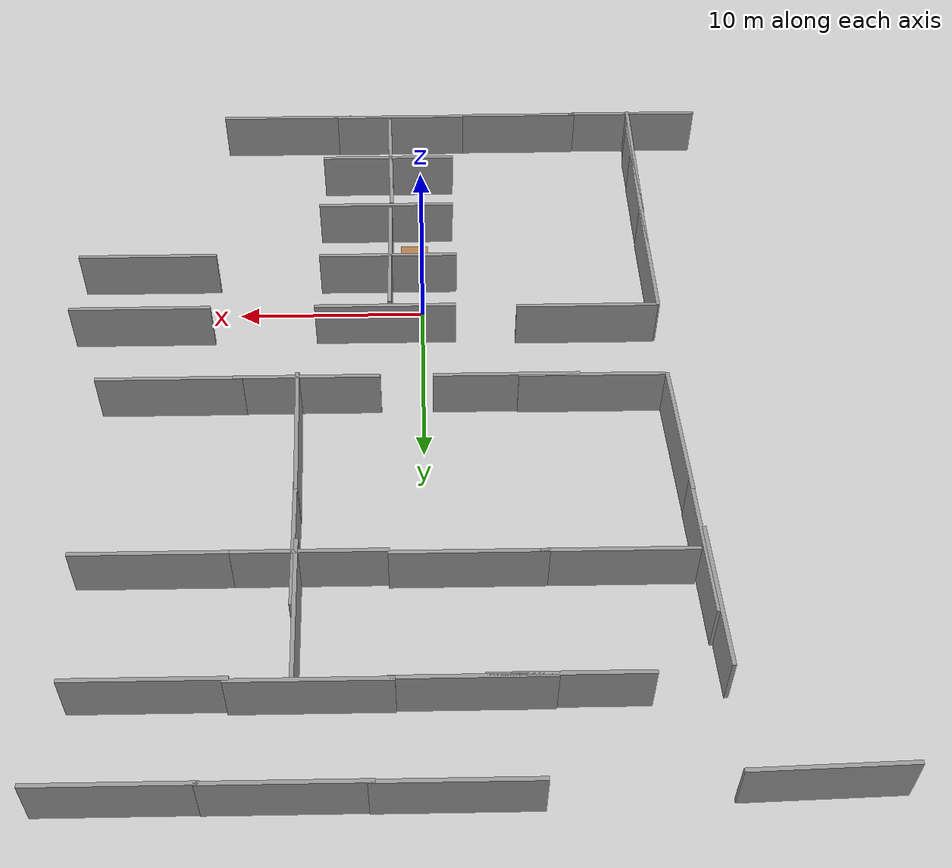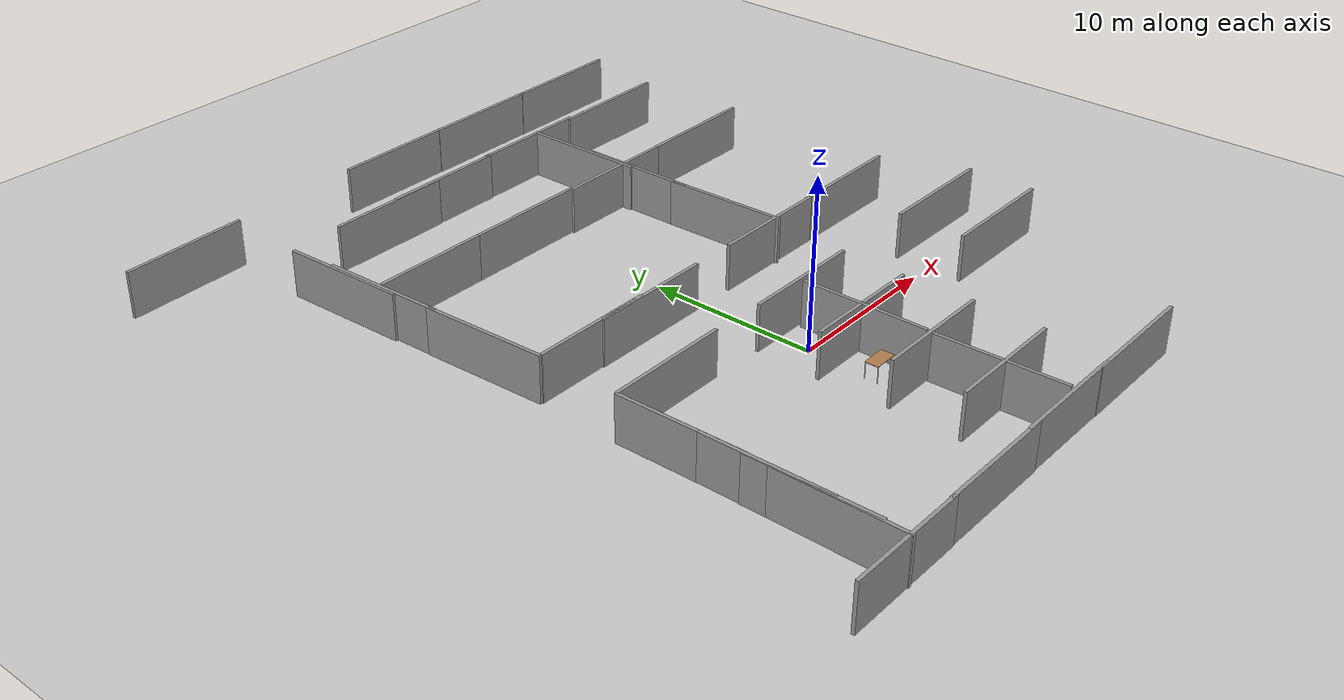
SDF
<sdf version="1.4">
 <world name="default">
  <model name="ground_plane">
   <static>1</static>
   <link name="link">
    <collision name="collision">
     <geometry><plane><normal>0 0 1</normal><size>100 100</size></plane></geometry>
     <surface><friction><ode><mu>100</mu><mu2>50</mu2></ode></friction></surface>
    </collision>
    <visual name="visual">
     <cast_shadows>0</cast_shadows>
     <geometry><plane><normal>0 0 1</normal><size>100 100</size></plane></geometry>
     <material>
      <script><uri>file://media/materials/scripts/gazebo.material</uri><name>Gazebo/Grey</name></script>
     </material>
    </visual>
    <velocity_decay><linear>0</linear><angular>0</angular></velocity_decay>
   </link>
  </model>
  <model name="grey_wall_4">
   <static>1</static>
   <link name="link">
    <pose>0 0 1.4 0 -0 0</pose>
    <collision name="collision"><geometry><box><size>7.5 0.2 2.8</size></box></geometry></collision>
    <visual name="visual">
     <cast_shadows>0</cast_shadows>
     <geometry><box><size>7.5 0.2 2.8</size></box></geometry>
     <material>
      <script>
       <uri>model://grey_wall/materials/scripts</uri>
       <uri>model://grey_wall/materials/textures</uri>
       <name>vrc/grey_wall</name>
      </script>
     </material>
    </visual>
    <velocity_decay><linear>0</linear><angular>0</angular></velocity_decay>
   </link>
   <pose>1.76043 -2.02847 0 0 0 -1.57147</pose>
  </model>
  <model name="grey_wall_5">
   <static>1</static>
   <link name="link">
    <pose>0 0 1.4 0 -0 0</pose>
    <collision name="collision"><geometry><box><size>7.5 0.2 2.8</size></box></geometry></collision>
    <visual name="visual">
     <cast_shadows>0</cast_shadows>
     <geometry><box><size>7.5 0.2 2.8</size></box></geometry>
     <material>
      <script>
       <uri>model://grey_wall/materials/scripts</uri>
       <uri>model://grey_wall/materials/textures</uri>
       <name>vrc/grey_wall</name>
      </script>
     </material>
    </visual>
    <velocity_decay><linear>0</linear><angular>0</angular></velocity_decay>
   </link>
   <pose>-8.7306 2.15586 0 0 -0 0</pose>
  </model>
  <model name="grey_wall_6">
   <static>1</static>
   <link name="link">
    <pose>0 0 1.4 0 -0 0</pose>
    <collision name="collision"><geometry><box><size>7.5 0.2 2.8</size></box></geometry></collision>
    <visual name="visual">
     <cast_shadows>0</cast_shadows>
     <geometry><box><size>7.5 0.2 2.8</size></box></geometry>
     <material>
      <script>
       <uri>model://grey_wall/materials/scripts</uri>
       <uri>model://grey_wall/materials/textures</uri>
       <name>vrc/grey_wall</name>
      </script>
     </material>
    </visual>
    <velocity_decay><linear>0</linear><angular>0</angular></velocity_decay>
   </link>
   <pose>2 2 0 0 -0 0</pose>
  </model>
  <model name="grey_wall_7">
   <static>1</static>
   <link name="link">
    <pose>0 0 1.4 0 -0 0</pose>
    <collision name="collision"><geometry><box><size>7.5 0.2 2.8</size></box></geometry></collision>
    <visual name="visual">
     <cast_shadows>0</cast_shadows>
     <geometry><box><size>7.5 0.2 2.8</size></box></geometry>
     <material>
      <script>
       <uri>model://grey_wall/materials/scripts</uri>
       <uri>model://grey_wall/materials/textures</uri>
       <name>vrc/grey_wall</name>
      </script>
     </material>
    </visual>
    <velocity_decay><linear>0</linear><angular>0</angular></velocity_decay>
   </link>
   <pose>1.87031 -1.87399 0 0 -0 0</pose>
  </model>
  <model name="grey_wall_8">
   <static>1</static>
   <link name="link">
    <pose>0 0 1.4 0 -0 0</pose>
    <collision name="collision"><geometry><box><size>7.5 0.2 2.8</size></box></geometry></collision>
    <visual name="visual">
     <cast_shadows>0</cast_shadows>
     <geometry><box><size>7.5 0.2 2.8</size></box></geometry>
     <material>
      <script>
       <uri>model://grey_wall/materials/scripts</uri>
       <uri>model://grey_wall/materials/textures</uri>
       <name>vrc/grey_wall</name>
      </script>
     </material>
    </visual>
    <velocity_decay><linear>0</linear><angular>0</angular></velocity_decay>
   </link>
   <pose>15 2 0 0 -0 0</pose>
  </model>
  <model name="grey_wall_9">
   <static>1</static>
   <link name="link">
    <pose>0 0 1.4 0 -0 0</pose>
    <collision name="collision"><geometry><box><size>7.5 0.2 2.8</size></box></geometry></collision>
    <visual name="visual">
     <cast_shadows>0</cast_shadows>
     <geometry><box><size>7.5 0.2 2.8</size></box></geometry>
     <material>
      <script>
       <uri>model://grey_wall/materials/scripts</uri>
       <uri>model://grey_wall/materials/textures</uri>
       <name>vrc/grey_wall</name>
      </script>
     </material>
    </visual>
    <velocity_decay><linear>0</linear><angular>0</angular></velocity_decay>
   </link>
   <pose>1.75832 -9.88504 0 0 0 -1.54747</pose>
  </model>
  <model name="grey_wall_10">
   <static>1</static>
   <link name="link">
    <pose>0 0 1.4 0 -0 0</pose>
    <collision name="collision"><geometry><box><size>7.5 0.2 2.8</size></box></geometry></collision>
    <visual name="visual">
     <cast_shadows>0</cast_shadows>
     <geometry><box><size>7.5 0.2 2.8</size></box></geometry>
     <material>
      <script>
       <uri>model://grey_wall/materials/scripts</uri>
       <uri>model://grey_wall/materials/textures</uri>
       <name>vrc/grey_wall</name>
      </script>
     </material>
    </visual>
    <velocity_decay><linear>0</linear><angular>0</angular></velocity_decay>
   </link>
   <pose>2 -6 0 0 -0 0</pose>
  </model>
  <model name="grey_wall_11">
   <static>1</static>
   <link name="link">
    <pose>0 0 1.4 0 -0 0</pose>
    <collision name="collision"><geometry><box><size>7.5 0.2 2.8</size></box></geometry></collision>
    <visual name="visual">
     <cast_shadows>0</cast_shadows>
     <geometry><box><size>7.5 0.2 2.8</size></box></geometry>
     <material>
      <script>
       <uri>model://grey_wall/materials/scripts</uri>
       <uri>model://grey_wall/materials/textures</uri>
       <name>vrc/grey_wall</name>
      </script>
     </material>
    </visual>
    <velocity_decay><linear>0</linear><angular>0</angular></velocity_decay>
   </link>
   <pose>1.90559 -10.1209 0 0 -0 0</pose>
  </model>
  <model name="grey_wall_12">
   <static>1</static>
   <link name="link">
    <pose>0 0 1.4 0 -0 0</pose>
    <collision name="collision"><geometry><box><size>7.5 0.2 2.8</size></box></geometry></collision>
    <visual name="visual">
     <cast_shadows>0</cast_shadows>
     <geometry><box><size>7.5 0.2 2.8</size></box></geometry>
     <material>
      <script>
       <uri>model://grey_wall/materials/scripts</uri>
       <uri>model://grey_wall/materials/textures</uri>
       <name>vrc/grey_wall</name>
      </script>
     </material>
    </visual>
    <velocity_decay><linear>0</linear><angular>0</angular></velocity_decay>
   </link>
   <pose>-5.47783 -13.92 0 0 -0 0</pose>
  </model>
  <model name="grey_wall_13">
   <static>1</static>
   <link name="link">
    <pose>0 0 1.4 0 -0 0</pose>
    <collision name="collision"><geometry><box><size>7.5 0.2 2.8</size></box></geometry></collision>
    <visual name="visual">
     <cast_shadows>0</cast_shadows>
     <geometry><box><size>7.5 0.2 2.8</size></box></geometry>
     <material>
      <script>
       <uri>model://grey_wall/materials/scripts</uri>
       <uri>model://grey_wall/materials/textures</uri>
       <name>vrc/grey_wall</name>
      </script>
     </material>
    </visual>
    <velocity_decay><linear>0</linear><angular>0</angular></velocity_decay>
   </link>
   <pose>-12.6281 -13.9585 0 0 -0 0</pose>
  </model>
  <model name="grey_wall_14">
   <static>1</static>
   <link name="link">
    <pose>0 0 1.4 0 -0 0</pose>
    <collision name="collision"><geometry><box><size>7.5 0.2 2.8</size></box></geometry></collision>
    <visual name="visual">
     <cast_shadows>0</cast_shadows>
     <geometry><box><size>7.5 0.2 2.8</size></box></geometry>
     <material>
      <script>
       <uri>model://grey_wall/materials/scripts</uri>
       <uri>model://grey_wall/materials/textures</uri>
       <name>vrc/grey_wall</name>
      </script>
     </material>
    </visual>
    <velocity_decay><linear>0</linear><angular>0</angular></velocity_decay>
   </link>
   <pose>1.20016 -13.8734 0 0 -0 0</pose>
  </model>
  <model name="grey_wall_15">
   <static>1</static>
   <link name="link">
    <pose>0 0 1.4 0 -0 0</pose>
    <collision name="collision"><geometry><box><size>7.5 0.2 2.8</size></box></geometry></collision>
    <visual name="visual">
     <cast_shadows>0</cast_shadows>
     <geometry><box><size>7.5 0.2 2.8</size></box></geometry>
     <material>
      <script>
       <uri>model://grey_wall/materials/scripts</uri>
       <uri>model://grey_wall/materials/textures</uri>
       <name>vrc/grey_wall</name>
      </script>
     </material>
    </visual>
    <velocity_decay><linear>0</linear><angular>0</angular></velocity_decay>
   </link>
   <pose>7.9226 -13.9074 0 0 -0 0</pose>
  </model>
  <model name="grey_wall_16">
   <static>1</static>
   <link name="link">
    <pose>0 0 1.4 0 -0 0</pose>
    <collision name="collision"><geometry><box><size>7.5 0.2 2.8</size></box></geometry></collision>
    <visual name="visual">
     <cast_shadows>0</cast_shadows>
     <geometry><box><size>7.5 0.2 2.8</size></box></geometry>
     <material>
      <script>
       <uri>model://grey_wall/materials/scripts</uri>
       <uri>model://grey_wall/materials/textures</uri>
       <name>vrc/grey_wall</name>
      </script>
     </material>
    </visual>
    <velocity_decay><linear>0</linear><angular>0</angular></velocity_decay>
   </link>
   <pose>13.1902 29.4229 0 0 -0 0</pose>
  </model>
  <model name="grey_wall_18">
   <static>1</static>
   <link name="link">
    <pose>0 0 1.4 0 -0 0</pose>
    <collision name="collision"><geometry><box><size>7.5 0.2 2.8</size></box></geometry></collision>
    <visual name="visual">
     <cast_shadows>0</cast_shadows>
     <geometry><box><size>7.5 0.2 2.8</size></box></geometry>
     <material>
      <script>
       <uri>model://grey_wall/materials/scripts</uri>
       <uri>model://grey_wall/materials/textures</uri>
       <name>vrc/grey_wall</name>
      </script>
     </material>
    </visual>
    <velocity_decay><linear>0</linear><angular>0</angular></velocity_decay>
   </link>
   <pose>-12.3607 -8.8908 0 0 -0 1.58635</pose>
  </model>
  <model name="grey_wall_19">
   <static>1</static>
   <link name="link">
    <pose>0 0 1.4 0 -0 0</pose>
    <collision name="collision"><geometry><box><size>7.5 0.2 2.8</size></box></geometry></collision>
    <visual name="visual">
     <cast_shadows>0</cast_shadows>
     <geometry><box><size>7.5 0.2 2.8</size></box></geometry>
     <material>
      <script>
       <uri>model://grey_wall/materials/scripts</uri>
       <uri>model://grey_wall/materials/textures</uri>
       <name>vrc/grey_wall</name>
      </script>
     </material>
    </visual>
    <velocity_decay><linear>0</linear><angular>0</angular></velocity_decay>
   </link>
   <pose>-12.3584 -6.41598 0 0 -0 1.58097</pose>
  </model>
  <model name="grey_wall_20">
   <static>1</static>
   <link name="link">
    <pose>0 0 1.4 0 -0 0</pose>
    <collision name="collision"><geometry><box><size>7.5 0.2 2.8</size></box></geometry></collision>
    <visual name="visual">
     <cast_shadows>0</cast_shadows>
     <geometry><box><size>7.5 0.2 2.8</size></box></geometry>
     <material>
      <script>
       <uri>model://grey_wall/materials/scripts</uri>
       <uri>model://grey_wall/materials/textures</uri>
       <name>vrc/grey_wall</name>
      </script>
     </material>
    </visual>
    <velocity_decay><linear>0</linear><angular>0</angular></velocity_decay>
   </link>
   <pose>-12.407 -10.3605 0 0 -0 1.57033</pose>
  </model>
  <model name="grey_wall_21">
   <static>1</static>
   <link name="link">
    <pose>0 0 1.4 0 -0 0</pose>
    <collision name="collision"><geometry><box><size>7.5 0.2 2.8</size></box></geometry></collision>
    <visual name="visual">
     <cast_shadows>0</cast_shadows>
     <geometry><box><size>7.5 0.2 2.8</size></box></geometry>
     <material>
      <script>
       <uri>model://grey_wall/materials/scripts</uri>
       <uri>model://grey_wall/materials/textures</uri>
       <name>vrc/grey_wall</name>
      </script>
     </material>
    </visual>
    <velocity_decay><linear>0</linear><angular>0</angular></velocity_decay>
   </link>
   <pose>-12.4167 -1.56824 0 0 -0 1.5898</pose>
  </model>
  <model name="grey_wall_27">
   <static>1</static>
   <link name="link">
    <pose>0 0 1.4 0 -0 0</pose>
    <collision name="collision"><geometry><box><size>7.5 0.2 2.8</size></box></geometry></collision>
    <visual name="visual">
     <cast_shadows>0</cast_shadows>
     <geometry><box><size>7.5 0.2 2.8</size></box></geometry>
     <material>
      <script>
       <uri>model://grey_wall/materials/scripts</uri>
       <uri>model://grey_wall/materials/textures</uri>
       <name>vrc/grey_wall</name>
      </script>
     </material>
    </visual>
    <velocity_decay><linear>0</linear><angular>0</angular></velocity_decay>
   </link>
   <pose>15 -2 0 0 -0 0</pose>
  </model>
  <model name="grey_wall_30">
   <static>1</static>
   <link name="link">
    <pose>0 0 1.4 0 -0 0</pose>
    <collision name="collision"><geometry><box><size>7.5 0.2 2.8</size></box></geometry></collision>
    <visual name="visual">
     <cast_shadows>0</cast_shadows>
     <geometry><box><size>7.5 0.2 2.8</size></box></geometry>
     <material>
      <script>
       <uri>model://grey_wall/materials/scripts</uri>
       <uri>model://grey_wall/materials/textures</uri>
       <name>vrc/grey_wall</name>
      </script>
     </material>
    </visual>
    <velocity_decay><linear>0</linear><angular>0</angular></velocity_decay>
   </link>
   <pose>12.9504 7.03198 0 0 -0 0</pose>
  </model>
  <model name="grey_wall_31">
   <static>1</static>
   <link name="link">
    <pose>0 0 1.4 0 -0 0</pose>
    <collision name="collision"><geometry><box><size>7.5 0.2 2.8</size></box></geometry></collision>
    <visual name="visual">
     <cast_shadows>0</cast_shadows>
     <geometry><box><size>7.5 0.2 2.8</size></box></geometry>
     <material>
      <script>
       <uri>model://grey_wall/materials/scripts</uri>
       <uri>model://grey_wall/materials/textures</uri>
       <name>vrc/grey_wall</name>
      </script>
     </material>
    </visual>
    <velocity_decay><linear>0</linear><angular>0</angular></velocity_decay>
   </link>
   <pose>5.95072 7.01574 0 0 -0 0</pose>
  </model>
  <model name="grey_wall_32">
   <static>1</static>
   <link name="link">
    <pose>0 0 1.4 0 -0 0</pose>
    <collision name="collision"><geometry><box><size>7.5 0.2 2.8</size></box></geometry></collision>
    <visual name="visual">
     <cast_shadows>0</cast_shadows>
     <geometry><box><size>7.5 0.2 2.8</size></box></geometry>
     <material>
      <script>
       <uri>model://grey_wall/materials/scripts</uri>
       <uri>model://grey_wall/materials/textures</uri>
       <name>vrc/grey_wall</name>
      </script>
     </material>
    </visual>
    <velocity_decay><linear>0</linear><angular>0</angular></velocity_decay>
   </link>
   <pose>-4.21356 7.01915 0 0 -0 0</pose>
  </model>
  <model name="grey_wall_33">
   <static>1</static>
   <link name="link">
    <pose>0 0 1.4 0 -0 0</pose>
    <collision name="collision"><geometry><box><size>7.5 0.2 2.8</size></box></geometry></collision>
    <visual name="visual">
     <cast_shadows>0</cast_shadows>
     <geometry><box><size>7.5 0.2 2.8</size></box></geometry>
     <material>
      <script>
       <uri>model://grey_wall/materials/scripts</uri>
       <uri>model://grey_wall/materials/textures</uri>
       <name>vrc/grey_wall</name>
      </script>
     </material>
    </visual>
    <velocity_decay><linear>0</linear><angular>0</angular></velocity_decay>
   </link>
   <pose>-8.59378 7.10368 0 0 -0 0</pose>
  </model>
  <model name="table">
   <static>1</static>
   <link name="link">
    <collision name="surface">
     <pose>0 0 1 0 -0 0</pose>
     <geometry><box><size>1.5 0.8 0.03</size></box></geometry>
     <surface><friction><ode><mu>0.6</mu><mu2>0.6</mu2></ode></friction></surface>
    </collision>
    <visual name="visual1">
     <pose>0 0 1 0 -0 0</pose>
     <geometry><box><size>1.5 0.8 0.03</size></box></geometry>
     <material>
      <script><uri>file://media/materials/scripts/gazebo.material</uri><name>Gazebo/Wood</name></script>
     </material>
    </visual>
    <collision name="front_left_leg">
     <pose>0.68 0.38 0.5 0 -0 0</pose>
     <geometry><cylinder><radius>0.02</radius><length>1</length></cylinder></geometry>
    </collision>
    <visual name="front_left_leg">
     <pose>0.68 0.38 0.5 0 -0 0</pose>
     <geometry><cylinder><radius>0.02</radius><length>1</length></cylinder></geometry>
     <material>
      <script><uri>file://media/materials/scripts/gazebo.material</uri><name>Gazebo/Grey</name></script>
     </material>
    </visual>
    <collision name="front_right_leg">
     <pose>0.68 -0.38 0.5 0 -0 0</pose>
     <geometry><cylinder><radius>0.02</radius><length>1</length></cylinder></geometry>
    </collision>
    <visual name="front_right_leg">
     <pose>0.68 -0.38 0.5 0 -0 0</pose>
     <geometry><cylinder><radius>0.02</radius><length>1</length></cylinder></geometry>
     <material>
      <script><uri>file://media/materials/scripts/gazebo.material</uri><name>Gazebo/Grey</name></script>
     </material>
    </visual>
    <collision name="back_right_leg">
     <pose>-0.68 -0.38 0.5 0 -0 0</pose>
     <geometry><cylinder><radius>0.02</radius><length>1</length></cylinder></geometry>
    </collision>
    <visual name="back_right_leg">
     <pose>-0.68 -0.38 0.5 0 -0 0</pose>
     <geometry><cylinder><radius>0.02</radius><length>1</length></cylinder></geometry>
     <material>
      <script><uri>file://media/materials/scripts/gazebo.material</uri><name>Gazebo/Grey</name></script>
     </material>
    </visual>
    <collision name="back_left_leg">
     <pose>-0.68 0.38 0.5 0 -0 0</pose>
     <geometry><cylinder><radius>0.02</radius><length>1</length></cylinder></geometry>
    </collision>
    <visual name="back_left_leg">
     <pose>-0.68 0.38 0.5 0 -0 0</pose>
     <geometry><cylinder><radius>0.02</radius><length>1</length></cylinder></geometry>
     <material>
      <script><uri>file://media/materials/scripts/gazebo.material</uri><name>Gazebo/Grey</name></script>
     </material>
    </visual>
    <velocity_decay><linear>0</linear><angular>0</angular></velocity_decay>
   </link>
   <pose>0.424127 -4 0 0 -0 0</pose>
  </model>
  <model name="grey_wall_36">
   <static>1</static>
   <link name="link">
    <pose>0 0 1.4 0 -0 0</pose>
    <collision name="collision"><geometry><box><size>7.5 0.2 2.8</size></box></geometry></collision>
    <visual name="visual">
     <cast_shadows>0</cast_shadows>
     <geometry><box><size>7.5 0.2 2.8</size></box></geometry>
     <material>
      <script>
       <uri>model://grey_wall/materials/scripts</uri>
       <uri>model://grey_wall/materials/textures</uri>
       <name>vrc/grey_wall</name>
      </script>
     </material>
    </visual>
    <velocity_decay><linear>0</linear><angular>0</angular></velocity_decay>
   </link>
   <pose>5.93396 29.4462 0 0 -0 0</pose>
  </model>
  <model name="grey_wall_67">
   <static>1</static>
   <link name="link">
    <pose>0 0 1.4 0 -0 0</pose>
    <collision name="collision"><geometry><box><size>7.5 0.2 2.8</size></box></geometry></collision>
    <visual name="visual">
     <cast_shadows>0</cast_shadows>
     <geometry><box><size>7.5 0.2 2.8</size></box></geometry>
     <material>
      <script>
       <uri>model://grey_wall/materials/scripts</uri>
       <uri>model://grey_wall/materials/textures</uri>
       <name>vrc/grey_wall</name>
      </script>
     </material>
    </visual>
    <velocity_decay><linear>0</linear><angular>0</angular></velocity_decay>
   </link>
   <pose>12.8174 17.8591 0 0 -0 0</pose>
  </model>
  <model name="grey_wall_69">
   <static>1</static>
   <link name="link">
    <pose>0 0 1.4 0 -0 0</pose>
    <collision name="collision"><geometry><box><size>7.5 0.2 2.8</size></box></geometry></collision>
    <visual name="visual">
     <cast_shadows>0</cast_shadows>
     <geometry><box><size>7.5 0.2 2.8</size></box></geometry>
     <material>
      <script>
       <uri>model://grey_wall/materials/scripts</uri>
       <uri>model://grey_wall/materials/textures</uri>
       <name>vrc/grey_wall</name>
      </script>
     </material>
    </visual>
    <velocity_decay><linear>0</linear><angular>0</angular></velocity_decay>
   </link>
   <pose>12.3305 24.5137 0 0 -0 0</pose>
  </model>
  <model name="grey_wall_54">
   <static>1</static>
   <link name="link">
    <pose>0 0 1.4 0 -0 0</pose>
    <collision name="collision"><geometry><box><size>7.5 0.2 2.8</size></box></geometry></collision>
    <visual name="visual">
     <cast_shadows>0</cast_shadows>
     <geometry><box><size>7.5 0.2 2.8</size></box></geometry>
     <material>
      <script>
       <uri>model://grey_wall/materials/scripts</uri>
       <uri>model://grey_wall/materials/textures</uri>
       <name>vrc/grey_wall</name>
      </script>
     </material>
    </visual>
    <velocity_decay><linear>0</linear><angular>0</angular></velocity_decay>
   </link>
   <pose>6.14616 17.0262 0 0 0 -1.55394</pose>
  </model>
  <model name="grey_wall_55">
   <static>1</static>
   <link name="link">
    <pose>0 0 1.4 0 -0 0</pose>
    <collision name="collision"><geometry><box><size>7.5 0.2 2.8</size></box></geometry></collision>
    <visual name="visual">
     <cast_shadows>0</cast_shadows>
     <geometry><box><size>7.5 0.2 2.8</size></box></geometry>
     <material>
      <script>
       <uri>model://grey_wall/materials/scripts</uri>
       <uri>model://grey_wall/materials/textures</uri>
       <name>vrc/grey_wall</name>
      </script>
     </material>
    </visual>
    <velocity_decay><linear>0</linear><angular>0</angular></velocity_decay>
   </link>
   <pose>6.30263 10.4929 0 0 0 -1.53721</pose>
  </model>
  <model name="grey_wall_56">
   <static>1</static>
   <link name="link">
    <pose>0 0 1.4 0 -0 0</pose>
    <collision name="collision"><geometry><box><size>7.5 0.2 2.8</size></box></geometry></collision>
    <visual name="visual">
     <cast_shadows>0</cast_shadows>
     <geometry><box><size>7.5 0.2 2.8</size></box></geometry>
     <material>
      <script>
       <uri>model://grey_wall/materials/scripts</uri>
       <uri>model://grey_wall/materials/textures</uri>
       <name>vrc/grey_wall</name>
      </script>
     </material>
    </visual>
    <velocity_decay><linear>0</linear><angular>0</angular></velocity_decay>
   </link>
   <pose>5.39395 17.8527 0 0 -0 0</pose>
  </model>
  <model name="grey_wall_60">
   <static>1</static>
   <link name="link">
    <pose>0 0 1.4 0 -0 0</pose>
    <collision name="collision"><geometry><box><size>7.5 0.2 2.8</size></box></geometry></collision>
    <visual name="visual">
     <cast_shadows>0</cast_shadows>
     <geometry><box><size>7.5 0.2 2.8</size></box></geometry>
     <material>
      <script>
       <uri>model://grey_wall/materials/scripts</uri>
       <uri>model://grey_wall/materials/textures</uri>
       <name>vrc/grey_wall</name>
      </script>
     </material>
    </visual>
    <velocity_decay><linear>0</linear><angular>0</angular></velocity_decay>
   </link>
   <pose>-1.23638 29.4773 0 0 -0 0</pose>
  </model>
  <model name="grey_wall_70">
   <static>1</static>
   <link name="link">
    <pose>0 0 1.4 0 -0 0</pose>
    <collision name="collision"><geometry><box><size>7.5 0.2 2.8</size></box></geometry></collision>
    <visual name="visual">
     <cast_shadows>0</cast_shadows>
     <geometry><box><size>7.5 0.2 2.8</size></box></geometry>
     <material>
      <script>
       <uri>model://grey_wall/materials/scripts</uri>
       <uri>model://grey_wall/materials/textures</uri>
       <name>vrc/grey_wall</name>
      </script>
     </material>
    </visual>
    <velocity_decay><linear>0</linear><angular>0</angular></velocity_decay>
   </link>
   <pose>5.13581 24.6396 0 0 -0 0</pose>
  </model>
  <model name="grey_wall_71">
   <static>1</static>
   <link name="link">
    <pose>0 0 1.4 0 -0 0</pose>
    <collision name="collision"><geometry><box><size>7.5 0.2 2.8</size></box></geometry></collision>
    <visual name="visual">
     <cast_shadows>0</cast_shadows>
     <geometry><box><size>7.5 0.2 2.8</size></box></geometry>
     <material>
      <script>
       <uri>model://grey_wall/materials/scripts</uri>
       <uri>model://grey_wall/materials/textures</uri>
       <name>vrc/grey_wall</name>
      </script>
     </material>
    </visual>
    <velocity_decay><linear>0</linear><angular>0</angular></velocity_decay>
   </link>
   <pose>5.947 20.9147 0 0 0 -1.55114</pose>
  </model>
  <model name="grey_wall_72">
   <static>1</static>
   <link name="link">
    <pose>0 0 1.4 0 -0 0</pose>
    <collision name="collision"><geometry><box><size>7.5 0.2 2.8</size></box></geometry></collision>
    <visual name="visual">
     <cast_shadows>0</cast_shadows>
     <geometry><box><size>7.5 0.2 2.8</size></box></geometry>
     <material>
      <script>
       <uri>model://grey_wall/materials/scripts</uri>
       <uri>model://grey_wall/materials/textures</uri>
       <name>vrc/grey_wall</name>
      </script>
     </material>
    </visual>
    <velocity_decay><linear>0</linear><angular>0</angular></velocity_decay>
   </link>
   <pose>-2 18 0 0 -0 0</pose>
  </model>
  <model name="grey_wall_73">
   <static>1</static>
   <link name="link">
    <pose>0 0 1.4 0 -0 0</pose>
    <collision name="collision"><geometry><box><size>7.5 0.2 2.8</size></box></geometry></collision>
    <visual name="visual">
     <cast_shadows>0</cast_shadows>
     <geometry><box><size>7.5 0.2 2.8</size></box></geometry>
     <material>
      <script>
       <uri>model://grey_wall/materials/scripts</uri>
       <uri>model://grey_wall/materials/textures</uri>
       <name>vrc/grey_wall</name>
      </script>
     </material>
    </visual>
    <velocity_decay><linear>0</linear><angular>0</angular></velocity_decay>
   </link>
   <pose>-12.5953 10.8096 0 0 -0 1.62227</pose>
  </model>
  <model name="grey_wall_74">
   <static>1</static>
   <link name="link">
    <pose>0 0 1.4 0 -0 0</pose>
    <collision name="collision"><geometry><box><size>7.5 0.2 2.8</size></box></geometry></collision>
    <visual name="visual">
     <cast_shadows>0</cast_shadows>
     <geometry><box><size>7.5 0.2 2.8</size></box></geometry>
     <material>
      <script>
       <uri>model://grey_wall/materials/scripts</uri>
       <uri>model://grey_wall/materials/textures</uri>
       <name>vrc/grey_wall</name>
      </script>
     </material>
    </visual>
    <velocity_decay><linear>0</linear><angular>0</angular></velocity_decay>
   </link>
   <pose>-9 18 0 0 -0 0</pose>
  </model>
  <model name="grey_wall_75">
   <static>1</static>
   <link name="link">
    <pose>0 0 1.4 0 -0 0</pose>
    <collision name="collision"><geometry><box><size>7.5 0.2 2.8</size></box></geometry></collision>
    <visual name="visual">
     <cast_shadows>0</cast_shadows>
     <geometry><box><size>7.5 0.2 2.8</size></box></geometry>
     <material>
      <script>
       <uri>model://grey_wall/materials/scripts</uri>
       <uri>model://grey_wall/materials/textures</uri>
       <name>vrc/grey_wall</name>
      </script>
     </material>
    </visual>
    <velocity_decay><linear>0</linear><angular>0</angular></velocity_decay>
   </link>
   <pose>-2 24.5907 0 0 -0 0</pose>
  </model>
  <model name="grey_wall_76">
   <static>1</static>
   <link name="link">
    <pose>0 0 1.4 0 -0 0</pose>
    <collision name="collision"><geometry><box><size>7.5 0.2 2.8</size></box></geometry></collision>
    <visual name="visual">
     <cast_shadows>0</cast_shadows>
     <geometry><box><size>7.5 0.2 2.8</size></box></geometry>
     <material>
      <script>
       <uri>model://grey_wall/materials/scripts</uri>
       <uri>model://grey_wall/materials/textures</uri>
       <name>vrc/grey_wall</name>
      </script>
     </material>
    </visual>
    <velocity_decay><linear>0</linear><angular>0</angular></velocity_decay>
   </link>
   <pose>-12.9069 17.757 0 0 0 -1.52552</pose>
  </model>
  <model name="grey_wall_77">
   <static>1</static>
   <link name="link">
    <pose>0 0 1.4 0 -0 0</pose>
    <collision name="collision"><geometry><box><size>7.5 0.2 2.8</size></box></geometry></collision>
    <visual name="visual">
     <cast_shadows>0</cast_shadows>
     <geometry><box><size>7.5 0.2 2.8</size></box></geometry>
     <material>
      <script>
       <uri>model://grey_wall/materials/scripts</uri>
       <uri>model://grey_wall/materials/textures</uri>
       <name>vrc/grey_wall</name>
      </script>
     </material>
    </visual>
    <velocity_decay><linear>0</linear><angular>0</angular></velocity_decay>
   </link>
   <pose>-16.7994 29.1383 0 0 -0 0.031096</pose>
  </model>
  <model name="grey_wall_78">
   <static>1</static>
   <link name="link">
    <pose>0 0 1.4 0 -0 0</pose>
    <collision name="collision"><geometry><box><size>7.5 0.2 2.8</size></box></geometry></collision>
    <visual name="visual">
     <cast_shadows>0</cast_shadows>
     <geometry><box><size>7.5 0.2 2.8</size></box></geometry>
     <material>
      <script>
       <uri>model://grey_wall/materials/scripts</uri>
       <uri>model://grey_wall/materials/textures</uri>
       <name>vrc/grey_wall</name>
      </script>
     </material>
    </visual>
    <velocity_decay><linear>0</linear><angular>0</angular></velocity_decay>
   </link>
   <pose>-13.1853 20.5258 0 0 -0 1.61751</pose>
  </model>
  <model name="grey_wall_79">
   <static>1</static>
   <link name="link">
    <pose>0 0 1.4 0 -0 0</pose>
    <collision name="collision"><geometry><box><size>7.5 0.2 2.8</size></box></geometry></collision>
    <visual name="visual">
     <cast_shadows>0</cast_shadows>
     <geometry><box><size>7.5 0.2 2.8</size></box></geometry>
     <material>
      <script>
       <uri>model://grey_wall/materials/scripts</uri>
       <uri>model://grey_wall/materials/textures</uri>
       <name>vrc/grey_wall</name>
      </script>
     </material>
    </visual>
    <velocity_decay><linear>0</linear><angular>0</angular></velocity_decay>
   </link>
   <pose>-6.27341 24.5166 0 0 -0 0</pose>
  </model>
 </world>
</sdf>
